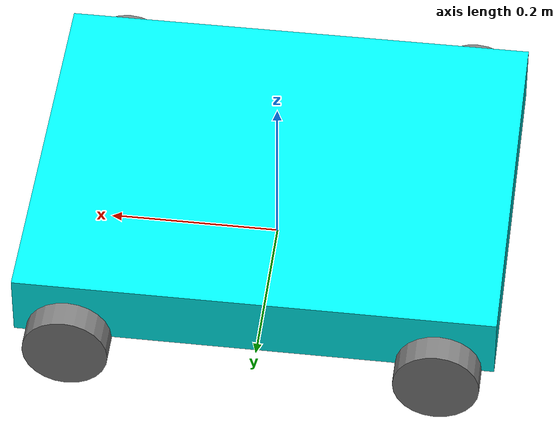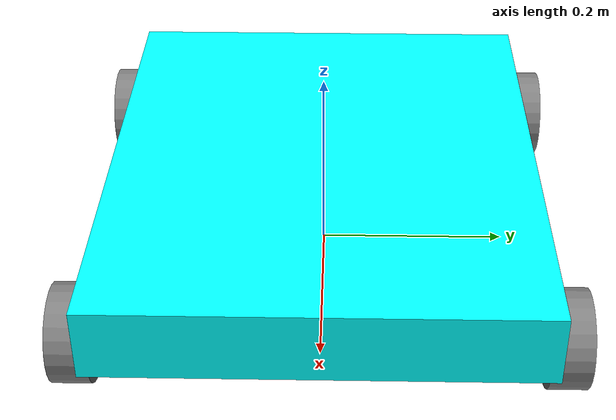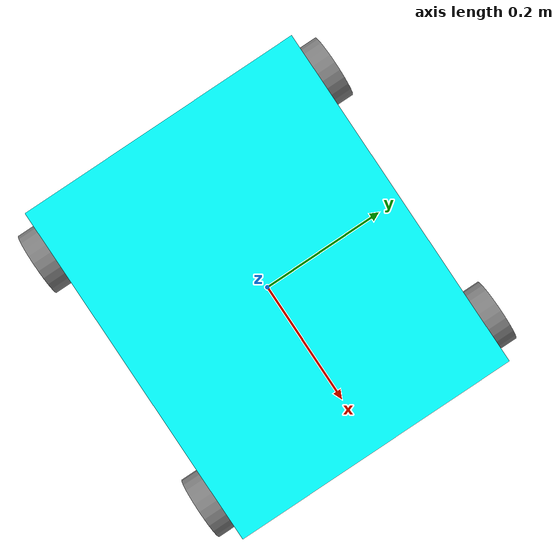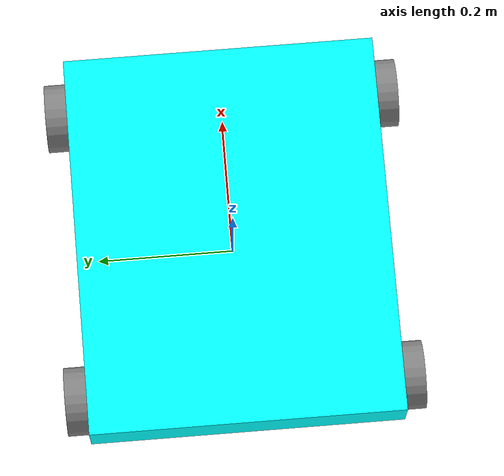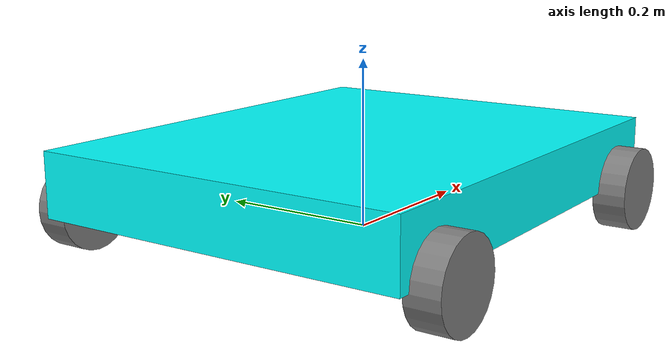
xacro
<?xml version="1.0"?>
<!-- ros2 launch trr_controller display.launch.py -->
<robot xmlns:xacro="http://www.ros.org/wiki/xacro" name="trr_robot">

    <xacro:include filename="$(find trr_robot_desc)/gazebo/trr_robot.gazebo.xacro" />
    <xacro:include filename="$(find trr_robot_desc)/ros2_control/trr_robot.ros2_control.xacro" />

    <xacro:property name="base_width" value="0.4572"/>
    <xacro:property name="base_length" value="0.5588"/>
    <xacro:property name="base_height" value="0.0762"/>

    <xacro:property name="wheel_radius" value="0.05"/>
    <xacro:property name="wheel_width" value="0.04"/>
    <xacro:property name="wheel_ygap" value="0.0127"/>
    <xacro:property name="wheel_zoff" value="0.0381"/>
    <xacro:property name="wheel_xoff" value="0.215"/>

    <!-- =============== Link & Joint =============== -->
    <link name="base_footprint"></link>

    <joint name="base_joint" type="fixed">
        <parent link="base_footprint"/>
        <child link="base_link"/>
        <origin xyz="0.0 0.0 0.075" rpy="0 0 0"/>
    </joint>

    <link name="base_link">
        <visual>
            <geometry>
                <box size="${base_length} ${base_width} ${base_height}"/>
            </geometry>
            <material name="Cyan">
                <color rgba="0 1.0 1.0 1.0"/>
            </material>
        </visual>
        <collision>
            <origin xyz="0 0 0.05" rpy="0 0 0"/>
            <geometry>
                <box size="${base_length} ${base_width} ${base_height}"/>
            </geometry>
        </collision>
        <inertial>
            <origin xyz="0 0 0.05" rpy="0 0 0"/>
            <mass value="12"/>
            <inertia ixx="2.26" ixy="0.0" ixz="0.0" iyy="6.26" iyz="0.0" izz="8.5"/>
        </inertial>
    </link>

    <!-- Wheels -->
    <xacro:macro name="wheel" params="prefix x_reflect y_reflect">
        <link name="${prefix}_link">
            <visual>
                <origin xyz="0 0 0" rpy="${pi/2} 0 0"/>
                <geometry>
                    <cylinder radius="${wheel_radius}" length="${wheel_width}"/>
                </geometry>
                <material name="Gray">
                <color rgba="0.5 0.5 0.5 1.0"/>
                </material>
            </visual>
            <collision>
                <origin xyz="0 0 0" rpy="${pi/2} 0 0"/>
                <geometry>
                    <cylinder radius="${wheel_radius}" length="${wheel_width}"/>
                </geometry>
            </collision>
            <inertial>
                <origin xyz="0 0 0"/>
                <mass value="0.05"/>
                <inertia ixx="0.00001" ixy="0" ixz="0" iyy="0.000018" iyz="0" izz="0.00001"/>
            </inertial>
        </link>

        <joint name="${prefix}_joint" type="continuous">
            <parent link="base_link"/>
            <child link="${prefix}_link"/>
            <origin xyz="${x_reflect*wheel_xoff} ${y_reflect*(base_width/2+wheel_ygap)} ${-wheel_zoff}" rpy="0 0 0"/>
            <axis xyz="0 1 0"/>
        </joint>
    </xacro:macro>

    <xacro:wheel prefix="drivewhl_1" x_reflect="-1" y_reflect="1" />
    <xacro:wheel prefix="drivewhl_2" x_reflect="-1" y_reflect="-1" />
    <xacro:wheel prefix="drivewhl_3" x_reflect="1" y_reflect="1" />
    <xacro:wheel prefix="drivewhl_4" x_reflect="1" y_reflect="-1" />

    <!-- =============== Gazebo =============== -->

    <xacro:macro name="base_gazebo_v0">
        <gazebo reference="base_link">
            <selfCollide>false</selfCollide>
            <mu1 value="0.05" />
            <mu2 value="0.05" />
        </gazebo>
    </xacro:macro>

    <xacro:macro name="wheel_gazebo_v0" params="prefix">
        <gazebo reference="${prefix}_link">
            <selfCollide>false</selfCollide>
            <mu1 value="1.2" />
            <mu2 value="1.2" />
        </gazebo>
    </xacro:macro>

    <xacro:base_gazebo_v0/>

    <xacro:wheel_gazebo_v0 prefix="drivewhl_1"/>
    <xacro:wheel_gazebo_v0 prefix="drivewhl_2"/>
    <xacro:wheel_gazebo_v0 prefix="drivewhl_3"/>
    <xacro:wheel_gazebo_v0 prefix="drivewhl_4"/>

    <xacro:trr_robot_gazebo/>
    <xacro:trr_robot_ros2_control/>

</robot>
